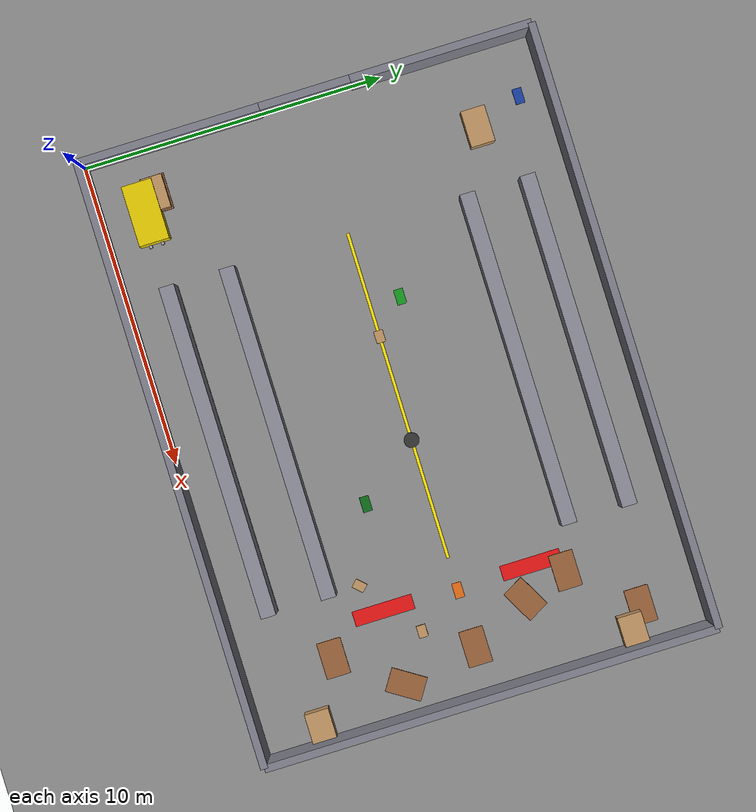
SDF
<?xml version="1.0" ?>
<sdf version="1.9">
<world name="walle_warehouse">

  <gravity>0 0 -9.81</gravity>
  <atmosphere type="adiabatic"/>

  <physics name="physics" type="ignored">
    <max_step_size>0.001</max_step_size>
    <real_time_factor>1.0</real_time_factor>
    <real_time_update_rate>1000</real_time_update_rate>
  </physics>

  <plugin filename="gz-sim-physics-system"        name="gz::sim::systems::Physics"/>
  <plugin filename="gz-sim-user-commands-system"  name="gz::sim::systems::UserCommands"/>
  <plugin filename="gz-sim-scene-broadcaster-system" name="gz::sim::systems::SceneBroadcaster"/>
  <plugin filename="gz-sim-sensors-system"        name="gz::sim::systems::Sensors">
    <render_engine>ogre2</render_engine>
  </plugin>

  <!-- ── Lighting: dim industrial warehouse (spec §1.5) ──────────────── -->
  <scene>
    <ambient>0.4 0.4 0.4 1</ambient>
    <background>0.1 0.1 0.12 1</background>
    <shadows>true</shadows>
  </scene>

  <light name="sun" type="directional">
    <cast_shadows>true</cast_shadows>
    <pose>0 0 10 0 0 0</pose>
    <diffuse>0.75 0.75 0.80 1</diffuse>
    <specular>0.15 0.15 0.15 1</specular>
    <direction>-0.5 0.1 -0.9</direction>
  </light>

  <light name="ceil_a"  type="point"><pose> 2  7.5 3.5 0 0 0</pose>
    <diffuse>1.0 0.95 0.85 1</diffuse><specular>0.2 0.2 0.2 1</specular>
    <attenuation><range>8</range><constant>0.2</constant><linear>0.05</linear><quadratic>0.02</quadratic></attenuation>
  </light>
  <light name="ceil_b1" type="point"><pose> 8  7.5 3.5 0 0 0</pose>
    <diffuse>1.0 0.95 0.85 1</diffuse><specular>0.2 0.2 0.2 1</specular>
    <attenuation><range>8</range><constant>0.2</constant><linear>0.05</linear><quadratic>0.02</quadratic></attenuation>
  </light>
  <light name="ceil_b2" type="point"><pose>12  7.5 3.5 0 0 0</pose>
    <diffuse>1.0 0.95 0.85 1</diffuse><specular>0.2 0.2 0.2 1</specular>
    <attenuation><range>8</range><constant>0.2</constant><linear>0.05</linear><quadratic>0.02</quadratic></attenuation>
  </light>
  <light name="ceil_d"  type="point"><pose>18  7.5 3.5 0 0 0</pose>
    <diffuse>1.0 0.95 0.85 1</diffuse><specular>0.2 0.2 0.2 1</specular>
    <attenuation><range>8</range><constant>0.2</constant><linear>0.05</linear><quadratic>0.02</quadratic></attenuation>
  </light>

  <!-- ── Ground plane: concrete gray (spec §1.5) ─────────────────────── -->
  <model name="ground_plane">
    <static>true</static>
    <link name="link">
      <collision name="col">
        <geometry><plane><normal>0 0 1</normal><size>20 15</size></plane></geometry>
        <surface><friction><ode><mu>0.8</mu><mu2>0.8</mu2></ode></friction></surface>
      </collision>
      <visual name="vis">
        <pose>10 7.5 0 0 0 0</pose>
        <geometry><plane><normal>0 0 1</normal><size>20 15</size></plane></geometry>
        <material>
          <ambient>0.50 0.50 0.50 1</ambient>
          <diffuse>0.55 0.55 0.55 1</diffuse>
          <specular>0.03 0.03 0.03 1</specular>
        </material>
      </visual>
    </link>
  </model>

  <!-- ── Outer walls ──────────────────────────────────────────────────── -->
  <!-- South wall  y=0,  x=0→20 -->
  <model name="wall_south">
    <static>true</static><pose>10 0 2 0 0 0</pose>
    <link name="link">
      <collision name="col"><geometry><box><size>20 0.25 4</size></box></geometry></collision>
      <visual name="vis"><geometry><box><size>20 0.25 4</size></box></geometry>
        <material><ambient>0.45 0.45 0.50 1</ambient><diffuse>0.50 0.50 0.55 1</diffuse></material>
      </visual>
    </link>
  </model>

  <!-- North wall  y=15, x=0→20 -->
  <model name="wall_north">
    <static>true</static><pose>10 15 2 0 0 0</pose>
    <link name="link">
      <collision name="col"><geometry><box><size>20 0.25 4</size></box></geometry></collision>
      <visual name="vis"><geometry><box><size>20 0.25 4</size></box></geometry>
        <material><ambient>0.45 0.45 0.50 1</ambient><diffuse>0.50 0.50 0.55 1</diffuse></material>
      </visual>
    </link>
  </model>

  <!-- East wall   x=20, y=0→15 -->
  <model name="wall_east">
    <static>true</static><pose>20 7.5 2 0 0 0</pose>
    <link name="link">
      <collision name="col"><geometry><box><size>0.25 15 4</size></box></geometry></collision>
      <visual name="vis"><geometry><box><size>0.25 15 4</size></box></geometry>
        <material><ambient>0.45 0.45 0.50 1</ambient><diffuse>0.50 0.50 0.55 1</diffuse></material>
      </visual>
    </link>
  </model>

  <!-- West wall south segment  x=0, y=0→6 (below rolling door) -->
  <model name="wall_west_south">
    <static>true</static><pose>0 3 2 0 0 0</pose>
    <link name="link">
      <collision name="col"><geometry><box><size>0.25 6 4</size></box></geometry></collision>
      <visual name="vis"><geometry><box><size>0.25 6 4</size></box></geometry>
        <material><ambient>0.45 0.45 0.50 1</ambient><diffuse>0.50 0.50 0.55 1</diffuse></material>
      </visual>
    </link>
  </model>

  <!-- West wall north segment  x=0, y=9→15 (above rolling door) -->
  <model name="wall_west_north">
    <static>true</static><pose>0 12 2 0 0 0</pose>
    <link name="link">
      <collision name="col"><geometry><box><size>0.25 6 4</size></box></geometry></collision>
      <visual name="vis"><geometry><box><size>0.25 6 4</size></box></geometry>
        <material><ambient>0.45 0.45 0.50 1</ambient><diffuse>0.50 0.50 0.55 1</diffuse></material>
      </visual>
    </link>
  </model>

  <!-- Rolling door lintel  x=0, y=6→9, z=2.5→4  (spec §1.3.5) -->
  <!-- PURPOSE: entry/exit point for missions; gap 3m×2.5m -->
  <model name="door_lintel">
    <static>true</static><pose>0 7.5 3.25 0 0 0</pose>
    <link name="link">
      <collision name="col"><geometry><box><size>0.25 3 1.5</size></box></geometry></collision>
      <visual name="vis"><geometry><box><size>0.25 3 1.5</size></box></geometry>
        <material><ambient>0.45 0.45 0.50 1</ambient><diffuse>0.50 0.50 0.55 1</diffuse></material>
      </visual>
    </link>
  </model>

  <!-- ── Zone C: Storage racks (spec §1.3.3) ──────────────────────────── -->
  <!-- 4 racks, 8m×0.5m×3m.  Under-rack clearance 0.25m (legs only).
       Lane between S1/S2 = 1.5m, between N1/N2 = 1.5m.
       PURPOSE: narrow lane navigation + potential under-rack obstacles.
  -->

  <!-- South rack pair (Zone C south, y=0–5) -->
  <model name="rack_s1">
    <static>true</static><pose>10 1.5 1.5 0 0 0</pose>
    <link name="link">
      <!-- Under-rack gap: z=0→0.25 is open; rack body z=0.25→3 -->
      <collision name="col_body"><pose>0 0 0.125 0 0 0</pose>
        <geometry><box><size>11 0.5 2.75</size></box></geometry></collision>
      <collision name="col_legs"><pose>0 0 -1.375 0 0 0</pose>
        <geometry><box><size>11 0.5 0.25</size></box></geometry></collision>
      <visual name="vis_body"><pose>0 0 0.125 0 0 0</pose>
        <geometry><box><size>11 0.5 2.75</size></box></geometry>
        <material><ambient>0.50 0.50 0.55 1</ambient><diffuse>0.55 0.55 0.60 1</diffuse></material>
      </visual>
      <visual name="vis_legs"><pose>0 0 -1.375 0 0 0</pose>
        <geometry><box><size>11 0.5 0.25</size></box></geometry>
        <material><ambient>0.40 0.40 0.45 1</ambient><diffuse>0.45 0.45 0.50 1</diffuse></material>
      </visual>
    </link>
  </model>

  <model name="rack_s2">
    <static>true</static><pose>10 3.5 1.5 0 0 0</pose>
    <link name="link">
      <collision name="col_body"><pose>0 0 0.125 0 0 0</pose>
        <geometry><box><size>11 0.5 2.75</size></box></geometry></collision>
      <visual name="vis_body"><pose>0 0 0.125 0 0 0</pose>
        <geometry><box><size>11 0.5 2.75</size></box></geometry>
        <material><ambient>0.50 0.50 0.55 1</ambient><diffuse>0.55 0.55 0.60 1</diffuse></material>
      </visual>
    </link>
  </model>

  <!-- North rack pair (Zone C north, y=10–15) -->
  <model name="rack_n1">
    <static>true</static><pose>10 11.5 1.5 0 0 0</pose>
    <link name="link">
      <collision name="col_body"><pose>0 0 0.125 0 0 0</pose>
        <geometry><box><size>11 0.5 2.75</size></box></geometry></collision>
      <visual name="vis_body"><pose>0 0 0.125 0 0 0</pose>
        <geometry><box><size>11 0.5 2.75</size></box></geometry>
        <material><ambient>0.50 0.50 0.55 1</ambient><diffuse>0.55 0.55 0.60 1</diffuse></material>
      </visual>
    </link>
  </model>

  <model name="rack_n2">
    <static>true</static><pose>10 13.5 1.5 0 0 0</pose>
    <link name="link">
      <collision name="col_body"><pose>0 0 0.125 0 0 0</pose>
        <geometry><box><size>11 0.5 2.75</size></box></geometry></collision>
      <visual name="vis_body"><pose>0 0 0.125 0 0 0</pose>
        <geometry><box><size>11 0.5 2.75</size></box></geometry>
        <material><ambient>0.50 0.50 0.55 1</ambient><diffuse>0.55 0.55 0.60 1</diffuse></material>
      </visual>
    </link>
  </model>

  <!-- ── Zone D: Low pallets (spec §1.3.1) ────────────────────────────── -->
  <!-- 6× pallet 1.2×0.8×0.15m. z=0.075 (center = half height).
       HEIGHT 0.15m < LiDAR plane 0.18m → PURPOSE: I-002 root-cause-1.
       At least 2 placed in the middle of the Zone D path.
  -->

  <!-- D1: south lane, blocking path -->
  <model name="pallet_low_d1">
    <static>true</static><pose>17.5 3.0 0.075 0 0 0</pose>
    <!-- PURPOSE I-002: 0.15m < LiDAR 0.18m, blocks path in Zone D south -->
    <link name="link">
      <collision name="col"><geometry><box><size>1.2 0.8 0.15</size></box></geometry></collision>
      <visual name="vis"><geometry><box><size>1.2 0.8 0.15</size></box></geometry>
        <material><ambient>0.55 0.35 0.20 1</ambient><diffuse>0.60 0.38 0.22 1</diffuse></material>
      </visual>
    </link>
  </model>

  <!-- D2: center of Zone D, direct axis block -->
  <model name="pallet_low_d2">
    <static>true</static><pose>18.5 7.5 0.075 0 0 0</pose>
    <!-- PURPOSE I-002: central block in Zone D, robot must detect via camera -->
    <link name="link">
      <collision name="col"><geometry><box><size>1.2 0.8 0.15</size></box></geometry></collision>
      <visual name="vis"><geometry><box><size>1.2 0.8 0.15</size></box></geometry>
        <material><ambient>0.55 0.35 0.20 1</ambient><diffuse>0.60 0.38 0.22 1</diffuse></material>
      </visual>
    </link>
  </model>

  <!-- D3: north lane -->
  <model name="pallet_low_d3">
    <static>true</static><pose>17.0 11.0 0.075 0 0 0</pose>
    <link name="link">
      <collision name="col"><geometry><box><size>1.2 0.8 0.15</size></box></geometry></collision>
      <visual name="vis"><geometry><box><size>1.2 0.8 0.15</size></box></geometry>
        <material><ambient>0.55 0.35 0.20 1</ambient><diffuse>0.60 0.38 0.22 1</diffuse></material>
      </visual>
    </link>
  </model>

  <!-- D4: near east wall -->
  <model name="pallet_low_d4">
    <static>true</static><pose>19.0 5.0 0.075 0 0 1.0</pose>
    <link name="link">
      <collision name="col"><geometry><box><size>1.2 0.8 0.15</size></box></geometry></collision>
      <visual name="vis"><geometry><box><size>1.2 0.8 0.15</size></box></geometry>
        <material><ambient>0.55 0.35 0.20 1</ambient><diffuse>0.60 0.38 0.22 1</diffuse></material>
      </visual>
    </link>
  </model>

  <!-- D5: north lane, blocking -->
  <model name="pallet_low_d5">
    <static>true</static><pose>17.5 9.5 0.075 0 0 0.5</pose>
    <link name="link">
      <collision name="col"><geometry><box><size>1.2 0.8 0.15</size></box></geometry></collision>
      <visual name="vis"><geometry><box><size>1.2 0.8 0.15</size></box></geometry>
        <material><ambient>0.55 0.35 0.20 1</ambient><diffuse>0.60 0.38 0.22 1</diffuse></material>
      </visual>
    </link>
  </model>

  <!-- D6: near north wall -->
  <model name="pallet_low_d6">
    <static>true</static><pose>18.8 13.0 0.075 0 0 0</pose>
    <link name="link">
      <collision name="col"><geometry><box><size>1.2 0.8 0.15</size></box></geometry></collision>
      <visual name="vis"><geometry><box><size>1.2 0.8 0.15</size></box></geometry>
        <material><ambient>0.55 0.35 0.20 1</ambient><diffuse>0.60 0.38 0.22 1</diffuse></material>
      </visual>
    </link>
  </model>

  <!-- ── Full pallets with cargo (spec §1.3.2) ────────────────────────── -->
  <!-- 4× pallet 1.2×0.8×1.5m. PURPOSE: baseline LiDAR detection. -->

  <model name="pallet_full_a1">
    <static>true</static><pose>1.5 2.0 0.75 0 0 0</pose>
    <!-- PURPOSE: Zone A baseline LiDAR obstacle -->
    <link name="link">
      <collision name="col"><geometry><box><size>1.2 0.8 1.5</size></box></geometry></collision>
      <visual name="vis_base"><geometry><box><size>1.2 0.8 0.15</size></box></geometry>
        <material><ambient>0.55 0.35 0.20 1</ambient><diffuse>0.60 0.38 0.22 1</diffuse></material>
      </visual>
      <visual name="vis_cargo"><pose>0 0 0.35 0 0 0</pose>
        <geometry><box><size>1.1 0.7 0.85</size></box></geometry>
        <material><ambient>0.72 0.55 0.35 1</ambient><diffuse>0.75 0.58 0.38 1</diffuse></material>
      </visual>
    </link>
  </model>

  <model name="pallet_full_a2">
    <static>true</static><pose>2.5 12.5 0.75 0 0 0</pose>
    <link name="link">
      <collision name="col"><geometry><box><size>1.2 0.8 1.5</size></box></geometry></collision>
      <visual name="vis"><geometry><box><size>1.2 0.8 1.5</size></box></geometry>
        <material><ambient>0.72 0.55 0.35 1</ambient><diffuse>0.75 0.58 0.38 1</diffuse></material>
      </visual>
    </link>
  </model>

  <model name="pallet_full_d1">
    <static>true</static><pose>19.5 2.0 0.75 0 0 0</pose>
    <link name="link">
      <collision name="col"><geometry><box><size>1.2 0.8 1.5</size></box></geometry></collision>
      <visual name="vis"><geometry><box><size>1.2 0.8 1.5</size></box></geometry>
        <material><ambient>0.72 0.55 0.35 1</ambient><diffuse>0.75 0.58 0.38 1</diffuse></material>
      </visual>
    </link>
  </model>

  <model name="pallet_full_d2">
    <static>true</static><pose>19.5 12.5 0.75 0 0 0</pose>
    <link name="link">
      <collision name="col"><geometry><box><size>1.2 0.8 1.5</size></box></geometry></collision>
      <visual name="vis"><geometry><box><size>1.2 0.8 1.5</size></box></geometry>
        <material><ambient>0.72 0.55 0.35 1</ambient><diffuse>0.75 0.58 0.38 1</diffuse></material>
      </visual>
    </link>
  </model>

  <!-- ── Carton boxes (spec §1.3.8) ───────────────────────────────────── -->
  <!-- 3× 0.4×0.3×0.35m. z=0.175.
       PURPOSE I-002: height ≈ LiDAR plane — marginal detection case.
  -->

  <!-- Zone B main lane — directly in path -->
  <model name="carton_b1">
    <static>true</static><pose>8.0 7.5 0.175 0 0 0</pose>
    <!-- PURPOSE I-002: 0.35m at LiDAR boundary — marginal detection in Zone B lane -->
    <link name="link">
      <collision name="col"><geometry><box><size>0.4 0.3 0.35</size></box></geometry></collision>
      <visual name="vis"><geometry><box><size>0.4 0.3 0.35</size></box></geometry>
        <material><ambient>0.72 0.55 0.35 1</ambient><diffuse>0.75 0.58 0.38 1</diffuse></material>
      </visual>
    </link>
  </model>

  <!-- Zone C–D border -->
  <model name="carton_b2">
    <static>true</static><pose>15.5 4.5 0.175 0 0 0.8</pose>
    <link name="link">
      <collision name="col"><geometry><box><size>0.4 0.3 0.35</size></box></geometry></collision>
      <visual name="vis"><geometry><box><size>0.4 0.3 0.35</size></box></geometry>
        <material><ambient>0.72 0.55 0.35 1</ambient><diffuse>0.75 0.58 0.38 1</diffuse></material>
      </visual>
    </link>
  </model>

  <!-- Zone D picking area -->
  <model name="carton_b3">
    <static>true</static><pose>17.5 6.0 0.175 0 0 0</pose>
    <link name="link">
      <collision name="col"><geometry><box><size>0.4 0.3 0.35</size></box></geometry></collision>
      <visual name="vis"><geometry><box><size>0.4 0.3 0.35</size></box></geometry>
        <material><ambient>0.72 0.55 0.35 1</ambient><diffuse>0.75 0.58 0.38 1</diffuse></material>
      </visual>
    </link>
  </model>

  <!-- ── Debris bag (spec §1.3.9) ─────────────────────────────────────── -->
  <!-- 0.5m wide × 0.2m tall, DARK (0.2 0.2 0.2).
       PURPOSE I-002 root-cause-2: low-contrast on gray concrete floor.
       Camera color-diff detection may miss this object.
  -->
  <model name="debris_bag">
    <static>true</static><pose>11.5 7.5 0.10 0 0 0</pose>
    <!-- PURPOSE I-002 root-cause-2: dark object, low color deviation from floor -->
    <link name="link">
      <collision name="col"><geometry><cylinder><radius>0.25</radius><length>0.20</length></cylinder></geometry></collision>
      <visual name="vis"><geometry><cylinder><radius>0.25</radius><length>0.20</length></cylinder></geometry>
        <material><ambient>0.18 0.18 0.18 1</ambient><diffuse>0.20 0.20 0.20 1</diffuse></material>
      </visual>
    </link>
  </model>

  <!-- ── Forklift static (spec §1.3.7) ────────────────────────────────── -->
  <!-- 2×1×1.6m, yellow. Zone A corner. PURPOSE: large baseline LiDAR obstacle. -->
  <model name="forklift">
    <static>true</static><pose>2.0 1.5 0.80 0 0 0</pose>
    <link name="link">
      <collision name="col"><geometry><box><size>2.0 1.0 1.6</size></box></geometry></collision>
      <visual name="vis_body"><geometry><box><size>2.0 1.0 1.6</size></box></geometry>
        <material><ambient>0.85 0.75 0.0 1</ambient><diffuse>0.90 0.80 0.0 1</diffuse></material>
      </visual>
      <!-- Forklift forks (two thin horizontal bars) -->
      <visual name="vis_fork_l"><pose>1.05 -0.20 -0.65 0 0 0</pose>
        <geometry><box><size>0.10 0.10 0.30</size></box></geometry>
        <material><ambient>0.60 0.60 0.60 1</ambient><diffuse>0.65 0.65 0.65 1</diffuse></material>
      </visual>
      <visual name="vis_fork_r"><pose>1.05  0.20 -0.65 0 0 0</pose>
        <geometry><box><size>0.10 0.10 0.30</size></box></geometry>
        <material><ambient>0.60 0.60 0.60 1</ambient><diffuse>0.65 0.65 0.65 1</diffuse></material>
      </visual>
    </link>
  </model>

  <!-- ── Warehouse signs with poles (spec §1.3.6) ─────────────────────── -->
  <!-- Pole: 0.05m dia × 2m tall. Sign: 0.5×0.3×0.10m at z=2.1.
       Colors encode zone identity (no text rendering in SDF).
       PURPOSE: VLM sign recognition for navigation commands.
  -->

  <!-- "KHO A" — Zone A entrance — blue -->
  <model name="sign_kho_a">
    <static>true</static><pose>2.0 14.0 0 0 0 0</pose>
    <link name="link">
      <collision name="col_pole"><pose>0 0 1.0 0 0 0</pose>
        <geometry><cylinder><radius>0.03</radius><length>2.0</length></cylinder></geometry></collision>
      <visual name="vis_pole"><pose>0 0 1.0 0 0 0</pose>
        <geometry><cylinder><radius>0.03</radius><length>2.0</length></cylinder></geometry>
        <material><ambient>0.5 0.5 0.5 1</ambient><diffuse>0.55 0.55 0.55 1</diffuse></material>
      </visual>
      <collision name="col_sign"><pose>0 0 2.1 0 0 0</pose>
        <geometry><box><size>0.50 0.30 0.10</size></box></geometry></collision>
      <visual name="vis_sign"><pose>0 0 2.1 0 0 0</pose>
        <geometry><box><size>0.50 0.30 0.10</size></box></geometry>
        <material><ambient>0.05 0.20 0.60 1</ambient><diffuse>0.10 0.25 0.65 1</diffuse></material>
      </visual>
    </link>
  </model>

  <!-- "LANE 1" — Zone B south side — green -->
  <model name="sign_lane1">
    <static>true</static><pose>7.0 8.5 0 0 0 0</pose>
    <link name="link">
      <collision name="col_pole"><pose>0 0 1.0 0 0 0</pose>
        <geometry><cylinder><radius>0.03</radius><length>2.0</length></cylinder></geometry></collision>
      <visual name="vis_pole"><pose>0 0 1.0 0 0 0</pose>
        <geometry><cylinder><radius>0.03</radius><length>2.0</length></cylinder></geometry>
        <material><ambient>0.5 0.5 0.5 1</ambient><diffuse>0.55 0.55 0.55 1</diffuse></material>
      </visual>
      <collision name="col_sign"><pose>0 0 2.1 0 0 0</pose>
        <geometry><box><size>0.50 0.30 0.10</size></box></geometry></collision>
      <visual name="vis_sign"><pose>0 0 2.1 0 0 0</pose>
        <geometry><box><size>0.50 0.30 0.10</size></box></geometry>
        <material><ambient>0.05 0.55 0.10 1</ambient><diffuse>0.08 0.60 0.12 1</diffuse></material>
      </visual>
    </link>
  </model>

  <!-- "LANE 2" — Zone B north side — green darker -->
  <model name="sign_lane2">
    <static>true</static><pose>13.0 5.5 0 0 0 0</pose>
    <link name="link">
      <collision name="col_pole"><pose>0 0 1.0 0 0 0</pose>
        <geometry><cylinder><radius>0.03</radius><length>2.0</length></cylinder></geometry></collision>
      <visual name="vis_pole"><pose>0 0 1.0 0 0 0</pose>
        <geometry><cylinder><radius>0.03</radius><length>2.0</length></cylinder></geometry>
        <material><ambient>0.5 0.5 0.5 1</ambient><diffuse>0.55 0.55 0.55 1</diffuse></material>
      </visual>
      <visual name="vis_sign"><pose>0 0 2.1 0 0 0</pose>
        <geometry><box><size>0.50 0.30 0.10</size></box></geometry>
        <material><ambient>0.03 0.38 0.08 1</ambient><diffuse>0.05 0.42 0.10 1</diffuse></material>
      </visual>
    </link>
  </model>

  <!-- "PICKING" — Zone D — orange (VinMotion accent) -->
  <model name="sign_picking">
    <static>true</static><pose>16.5 7.5 0 0 0 0</pose>
    <link name="link">
      <collision name="col_pole"><pose>0 0 1.0 0 0 0</pose>
        <geometry><cylinder><radius>0.03</radius><length>2.0</length></cylinder></geometry></collision>
      <visual name="vis_pole"><pose>0 0 1.0 0 0 0</pose>
        <geometry><cylinder><radius>0.03</radius><length>2.0</length></cylinder></geometry>
        <material><ambient>0.5 0.5 0.5 1</ambient><diffuse>0.55 0.55 0.55 1</diffuse></material>
      </visual>
      <collision name="col_sign"><pose>0 0 2.1 0 0 0</pose>
        <geometry><box><size>0.50 0.30 0.10</size></box></geometry></collision>
      <visual name="vis_sign"><pose>0 0 2.1 0 0 0</pose>
        <geometry><box><size>0.50 0.30 0.10</size></box></geometry>
        <material><ambient>0.85 0.38 0.05 1</ambient><diffuse>0.90 0.42 0.08 1</diffuse></material>
      </visual>
    </link>
  </model>

  <!-- ── Lane markings (spec §1.3.4) ──────────────────────────────────── -->
  <!-- Flat boxes h=0.002m. Yellow center line in Zone B.
       PURPOSE I-002 root-cause-3: floor sample may pick up yellow → false
       color deviation → false CAM_AVOID trigger.
  -->

  <!-- Yellow center line along Zone B (x=4.5→15.5, y=7.5) -->
  <model name="lane_center_line">
    <static>true</static><pose>10 7.5 0.001 0 0 0</pose>
    <link name="link">
      <collision name="col"><geometry><box><size>11 0.10 0.002</size></box></geometry></collision>
      <visual name="vis"><geometry><box><size>11 0.10 0.002</size></box></geometry>
        <material><ambient>0.95 0.85 0.0 1</ambient><diffuse>1.0 0.90 0.0 1</diffuse></material>
      </visual>
    </link>
  </model>

  <!-- Red forbidden zone markers near Zone D pallet cluster -->
  <model name="zone_d_marker_s">
    <static>true</static><pose>16.5 5.0 0.001 0 0 0</pose>
    <link name="link">
      <collision name="col"><geometry><box><size>0.5 2.0 0.002</size></box></geometry></collision>
      <visual name="vis"><geometry><box><size>0.5 2.0 0.002</size></box></geometry>
        <material><ambient>0.85 0.05 0.05 1</ambient><diffuse>0.90 0.08 0.08 1</diffuse></material>
      </visual>
    </link>
  </model>

  <model name="zone_d_marker_n">
    <static>true</static><pose>16.5 10.0 0.001 0 0 0</pose>
    <link name="link">
      <collision name="col"><geometry><box><size>0.5 2.0 0.002</size></box></geometry></collision>
      <visual name="vis"><geometry><box><size>0.5 2.0 0.002</size></box></geometry>
        <material><ambient>0.85 0.05 0.05 1</ambient><diffuse>0.90 0.08 0.08 1</diffuse></material>
      </visual>
    </link>
  </model>

</world>
</sdf>
